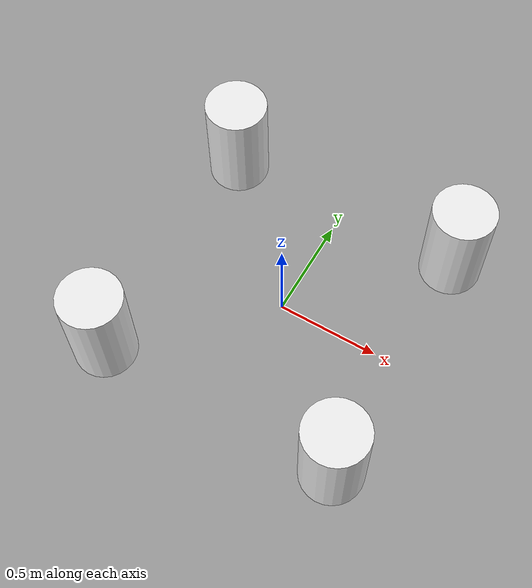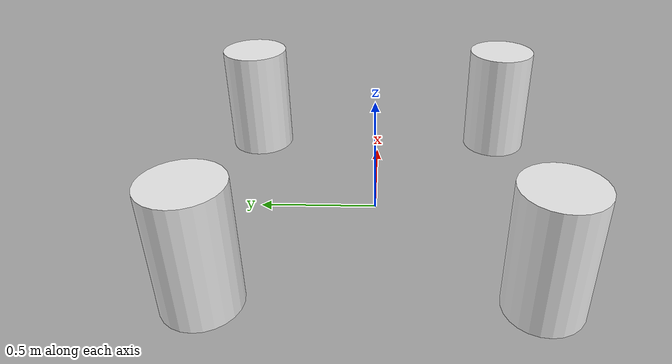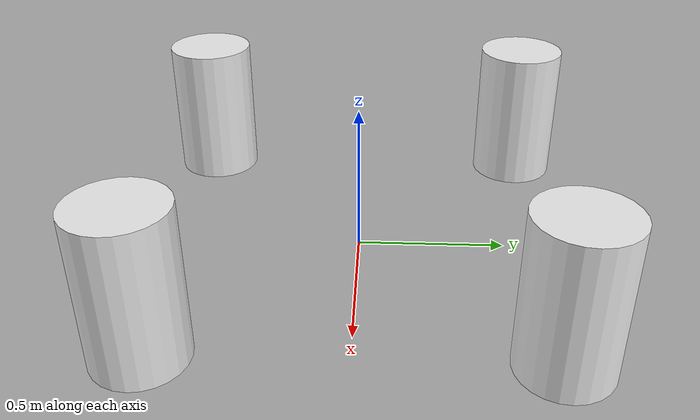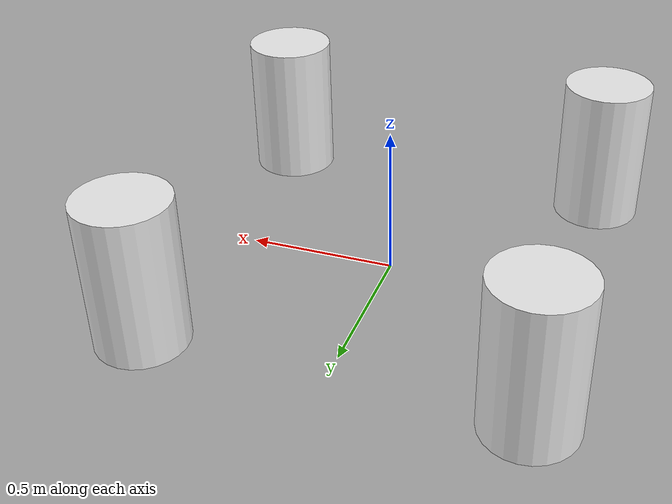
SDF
<sdf version='1.9'>
  <world name='default'>
    <physics type='ode'>
      <real_time_update_rate>1000</real_time_update_rate>
      <max_step_size>0.001</max_step_size>
      <real_time_factor>1</real_time_factor>
      <ode>
        <solver>
          <type>quick</type>
          <iters>150</iters>
          <precon_iters>0</precon_iters>
          <sor>1.3999999999999999</sor>
          <use_dynamic_moi_rescaling>true</use_dynamic_moi_rescaling>
        </solver>
        <constraints>
          <cfm>1.0000000000000001e-05</cfm>
          <erp>0.20000000000000001</erp>
          <contact_max_correcting_vel>2000</contact_max_correcting_vel>
          <contact_surface_layer>0.01</contact_surface_layer>
        </constraints>
      </ode>
    </physics>
    <model name='obstacle'>
      <pose>0 0 0 0 0 0</pose>
      <link name='obstacle'>
        <collision name='obstacle_1'>
          <pose>-0.59999999999999998 -0.59999999999999998 0.25 0 0 0</pose>
          <geometry>
            <cylinder>
              <radius>0.14999999999999999</radius>
              <length>0.5</length>
            </cylinder>
          </geometry>
          <max_contacts>10</max_contacts>
          <surface>
            <bounce/>
            <friction>
              <ode/>
            </friction>
            <contact>
              <ode/>
            </contact>
          </surface>
        </collision>
        <visual name='obstacle_1'>
          <pose>-0.59999999999999998 -0.59999999999999998 0.25 0 0 0</pose>
          <geometry>
            <cylinder>
              <radius>0.14999999999999999</radius>
              <length>0.5</length>
            </cylinder>
          </geometry>
          <material>
            <script>
              <uri>file://media/materials/scripts/gazebo.material</uri>
              <name>Gazebo/White</name>
            </script>
          </material>
        </visual>
        <collision name='obstacle_2'>
          <pose>-0.59999999999999998 0.59999999999999998 0.25 0 0 0</pose>
          <geometry>
            <cylinder>
              <radius>0.14999999999999999</radius>
              <length>0.5</length>
            </cylinder>
          </geometry>
          <max_contacts>10</max_contacts>
          <surface>
            <bounce/>
            <friction>
              <ode/>
            </friction>
            <contact>
              <ode/>
            </contact>
          </surface>
        </collision>
        <visual name='obstacle_2'>
          <pose>-0.59999999999999998 0.59999999999999998 0.25 0 0 0</pose>
          <geometry>
            <cylinder>
              <radius>0.14999999999999999</radius>
              <length>0.5</length>
            </cylinder>
          </geometry>
          <material>
            <script>
              <uri>file://media/materials/scripts/gazebo.material</uri>
              <name>Gazebo/White</name>
            </script>
          </material>
        </visual>
        <collision name='obstacle_3'>
          <pose>0.59999999999999998 -0.59999999999999998 0.25 0 0 0</pose>
          <geometry>
            <cylinder>
              <radius>0.14999999999999999</radius>
              <length>0.5</length>
            </cylinder>
          </geometry>
          <max_contacts>10</max_contacts>
          <surface>
            <bounce/>
            <friction>
              <ode/>
            </friction>
            <contact>
              <ode/>
            </contact>
          </surface>
        </collision>
        <visual name='obstacle_3'>
          <pose>0.59999999999999998 -0.59999999999999998 0.25 0 0 0</pose>
          <geometry>
            <cylinder>
              <radius>0.14999999999999999</radius>
              <length>0.5</length>
            </cylinder>
          </geometry>
          <material>
            <script>
              <uri>file://media/materials/scripts/gazebo.material</uri>
              <name>Gazebo/White</name>
            </script>
          </material>
        </visual>
        <collision name='obstacle_4'>
          <pose>0.59999999999999998 0.59999999999999998 0.25 0 0 0</pose>
          <geometry>
            <cylinder>
              <radius>0.14999999999999999</radius>
              <length>0.5</length>
            </cylinder>
          </geometry>
          <max_contacts>10</max_contacts>
          <surface>
            <bounce/>
            <friction>
              <ode/>
            </friction>
            <contact>
              <ode/>
            </contact>
          </surface>
        </collision>
        <visual name='obstacle_4'>
          <pose>0.59999999999999998 0.59999999999999998 0.25 0 0 0</pose>
          <geometry>
            <cylinder>
              <radius>0.14999999999999999</radius>
              <length>0.5</length>
            </cylinder>
          </geometry>
          <material>
            <script>
              <uri>file://media/materials/scripts/gazebo.material</uri>
              <name>Gazebo/White</name>
            </script>
          </material>
        </visual>
      </link>
    </model>
    <scene>
      <ambient>0.400000006 0.400000006 0.400000006 1</ambient>
      <background>0.699999988 0.699999988 0.699999988 1</background>
      <shadows>true</shadows>
    </scene>
    <gui fullscreen='false'>
      <camera name='user_camera'>
        <pose>0 0 17 3.1415926535897931 1.5707926536359933 3.1415926535897931</pose>
        <view_controller>orbit</view_controller>
      </camera>
    </gui>
    <gravity>0 0 -9.8000000000000007</gravity>
    <magnetic_field>5.5644999999999998e-06 2.2875799999999999e-05 -4.2388400000000002e-05</magnetic_field>
    <atmosphere type='adiabatic'/>
  </world>
</sdf>
